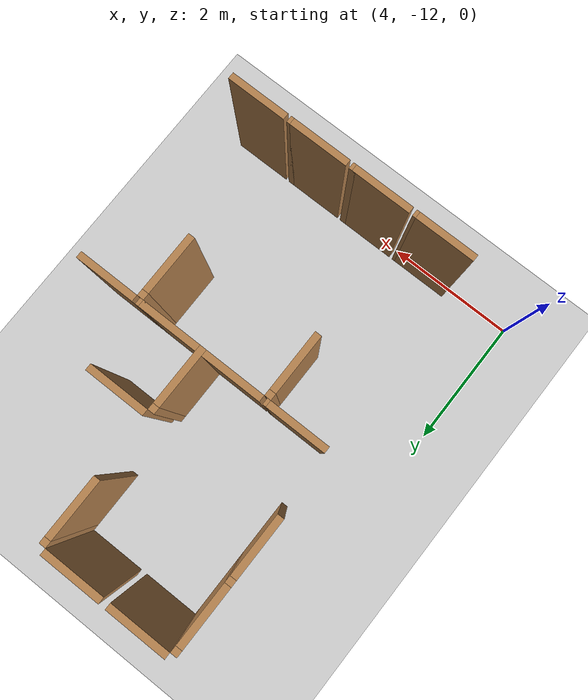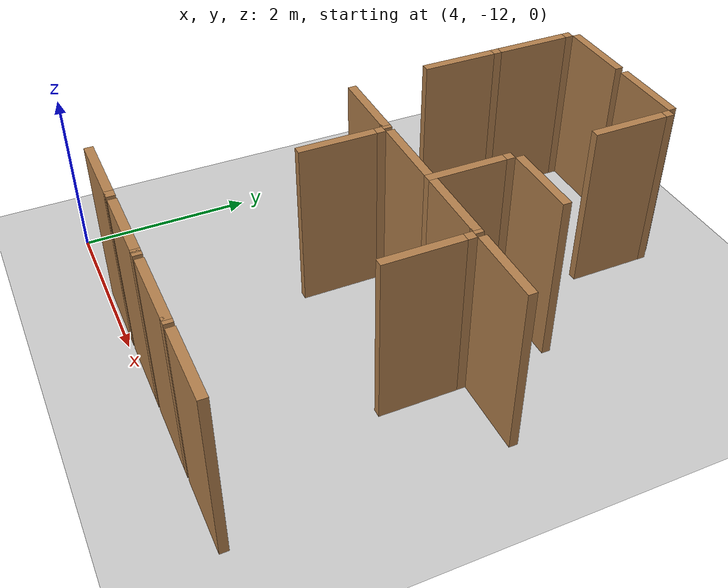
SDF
<sdf version="1.6">
 <world name="default">
  <include><uri>model://sun</uri></include>
  <model name="ground_plane">
   <static>true</static>
   <link name="link">
    <collision name="collision"><geometry><plane><size>12.0 12.0</size></plane></geometry></collision>
    <visual name="visual">
     <cast_shadows>false</cast_shadows>
     <geometry><plane><size>12.0 12.0</size></plane></geometry>
     <material>
      <script><uri>file://media/materials/scripts/gazebo.material</uri><name>Gazebo/Grey</name></script>
     </material>
    </visual>
   </link>
   <pose>6.0 -6.0 0 0 0 0</pose>
  </model>
  <model name="vwall_6_5">
   <pose>5.0 -6.5 1.0 0 0 0</pose>
   <link name="link">
    <collision name="collision"><geometry><box><size>0.1 0.9 2</size></box></geometry></collision>
    <visual name="visual">
     <geometry><box><size>0.1 0.9 2</size></box></geometry>
     <material>
      <script><uri>file://media/materials/scripts/gazebo.material</uri><name>Gazebo/Wood</name></script>
     </material>
    </visual>
   </link>
  </model>
  <model name="joint_5.0_-6.0">
   <pose>5.0 -6.0 1.0 0 0 0</pose>
   <link name="link">
    <collision name="collision"><geometry><box><size>0.1 0.1 2</size></box></geometry></collision>
    <visual name="visual">
     <geometry><box><size>0.1 0.1 2</size></box></geometry>
     <material>
      <script><uri>file://media/materials/scripts/gazebo.material</uri><name>Gazebo/Wood</name></script>
     </material>
    </visual>
   </link>
  </model>
  <model name="vwall_6_7">
   <pose>7.0 -6.5 1.0 0 0 0</pose>
   <link name="link">
    <collision name="collision"><geometry><box><size>0.1 0.9 2</size></box></geometry></collision>
    <visual name="visual">
     <geometry><box><size>0.1 0.9 2</size></box></geometry>
     <material>
      <script><uri>file://media/materials/scripts/gazebo.material</uri><name>Gazebo/Wood</name></script>
     </material>
    </visual>
   </link>
  </model>
  <model name="joint_7.0_-6.0">
   <pose>7.0 -6.0 1.0 0 0 0</pose>
   <link name="link">
    <collision name="collision"><geometry><box><size>0.1 0.1 2</size></box></geometry></collision>
    <visual name="visual">
     <geometry><box><size>0.1 0.1 2</size></box></geometry>
     <material>
      <script><uri>file://media/materials/scripts/gazebo.material</uri><name>Gazebo/Wood</name></script>
     </material>
    </visual>
   </link>
  </model>
  <model name="vwall_7_5">
   <pose>5.0 -7.5 1.0 0 0 0</pose>
   <link name="link">
    <collision name="collision"><geometry><box><size>0.1 0.9 2</size></box></geometry></collision>
    <visual name="visual">
     <geometry><box><size>0.1 0.9 2</size></box></geometry>
     <material>
      <script><uri>file://media/materials/scripts/gazebo.material</uri><name>Gazebo/Wood</name></script>
     </material>
    </visual>
   </link>
  </model>
  <model name="joint_5.0_-7.0">
   <pose>5.0 -7.0 1.0 0 0 0</pose>
   <link name="link">
    <collision name="collision"><geometry><box><size>0.1 0.1 2</size></box></geometry></collision>
    <visual name="visual">
     <geometry><box><size>0.1 0.1 2</size></box></geometry>
     <material>
      <script><uri>file://media/materials/scripts/gazebo.material</uri><name>Gazebo/Wood</name></script>
     </material>
    </visual>
   </link>
  </model>
  <model name="vwall_8_7">
   <pose>7.0 -8.5 1.0 0 0 0</pose>
   <link name="link">
    <collision name="collision"><geometry><box><size>0.1 0.9 2</size></box></geometry></collision>
    <visual name="visual">
     <geometry><box><size>0.1 0.9 2</size></box></geometry>
     <material>
      <script><uri>file://media/materials/scripts/gazebo.material</uri><name>Gazebo/Wood</name></script>
     </material>
    </visual>
   </link>
  </model>
  <model name="joint_7.0_-8.0">
   <pose>7.0 -8.0 1.0 0 0 0</pose>
   <link name="link">
    <collision name="collision"><geometry><box><size>0.1 0.1 2</size></box></geometry></collision>
    <visual name="visual">
     <geometry><box><size>0.1 0.1 2</size></box></geometry>
     <material>
      <script><uri>file://media/materials/scripts/gazebo.material</uri><name>Gazebo/Wood</name></script>
     </material>
    </visual>
   </link>
  </model>
  <model name="vwall_9_6">
   <pose>6.0 -9.5 1.0 0 0 0</pose>
   <link name="link">
    <collision name="collision"><geometry><box><size>0.1 0.9 2</size></box></geometry></collision>
    <visual name="visual">
     <geometry><box><size>0.1 0.9 2</size></box></geometry>
     <material>
      <script><uri>file://media/materials/scripts/gazebo.material</uri><name>Gazebo/Wood</name></script>
     </material>
    </visual>
   </link>
  </model>
  <model name="joint_6.0_-9.0">
   <pose>6.0 -9.0 1.0 0 0 0</pose>
   <link name="link">
    <collision name="collision"><geometry><box><size>0.1 0.1 2</size></box></geometry></collision>
    <visual name="visual">
     <geometry><box><size>0.1 0.1 2</size></box></geometry>
     <material>
      <script><uri>file://media/materials/scripts/gazebo.material</uri><name>Gazebo/Wood</name></script>
     </material>
    </visual>
   </link>
  </model>
  <model name="vwall_9_8">
   <pose>8.0 -9.5 1.0 0 0 0</pose>
   <link name="link">
    <collision name="collision"><geometry><box><size>0.1 0.9 2</size></box></geometry></collision>
    <visual name="visual">
     <geometry><box><size>0.1 0.9 2</size></box></geometry>
     <material>
      <script><uri>file://media/materials/scripts/gazebo.material</uri><name>Gazebo/Wood</name></script>
     </material>
    </visual>
   </link>
  </model>
  <model name="joint_8.0_-9.0">
   <pose>8.0 -9.0 1.0 0 0 0</pose>
   <link name="link">
    <collision name="collision"><geometry><box><size>0.1 0.1 2</size></box></geometry></collision>
    <visual name="visual">
     <geometry><box><size>0.1 0.1 2</size></box></geometry>
     <material>
      <script><uri>file://media/materials/scripts/gazebo.material</uri><name>Gazebo/Wood</name></script>
     </material>
    </visual>
   </link>
  </model>
  <model name="hwall_5_5">
   <pose>5.5 -5.9 1.0 0 0 0</pose>
   <link name="link">
    <collision name="collision"><geometry><box><size>0.9 0.1 2</size></box></geometry></collision>
    <visual name="visual">
     <geometry><box><size>0.9 0.1 2</size></box></geometry>
     <material>
      <script><uri>file://media/materials/scripts/gazebo.material</uri><name>Gazebo/Wood</name></script>
     </material>
    </visual>
   </link>
  </model>
  <model name="hwall_5_6">
   <pose>6.5 -5.9 1.0 0 0 0</pose>
   <link name="link">
    <collision name="collision"><geometry><box><size>0.9 0.1 2</size></box></geometry></collision>
    <visual name="visual">
     <geometry><box><size>0.9 0.1 2</size></box></geometry>
     <material>
      <script><uri>file://media/materials/scripts/gazebo.material</uri><name>Gazebo/Wood</name></script>
     </material>
    </visual>
   </link>
  </model>
  <model name="hwall_7_7">
   <pose>7.5 -7.9 1.0 0 0 0</pose>
   <link name="link">
    <collision name="collision"><geometry><box><size>0.9 0.1 2</size></box></geometry></collision>
    <visual name="visual">
     <geometry><box><size>0.9 0.1 2</size></box></geometry>
     <material>
      <script><uri>file://media/materials/scripts/gazebo.material</uri><name>Gazebo/Wood</name></script>
     </material>
    </visual>
   </link>
  </model>
  <model name="hwall_8_5">
   <pose>5.5 -8.9 1.0 0 0 0</pose>
   <link name="link">
    <collision name="collision"><geometry><box><size>0.9 0.1 2</size></box></geometry></collision>
    <visual name="visual">
     <geometry><box><size>0.9 0.1 2</size></box></geometry>
     <material>
      <script><uri>file://media/materials/scripts/gazebo.material</uri><name>Gazebo/Wood</name></script>
     </material>
    </visual>
   </link>
  </model>
  <model name="joint_5.95_-8.9">
   <pose>5.95 -8.9 1.0 0 0 0</pose>
   <link name="link">
    <collision name="collision"><geometry><box><size>0.1 0.1 2</size></box></geometry></collision>
    <visual name="visual">
     <geometry><box><size>0.1 0.1 2</size></box></geometry>
     <material>
      <script><uri>file://media/materials/scripts/gazebo.material</uri><name>Gazebo/Wood</name></script>
     </material>
    </visual>
   </link>
  </model>
  <model name="hwall_8_6">
   <pose>6.5 -8.9 1.0 0 0 0</pose>
   <link name="link">
    <collision name="collision"><geometry><box><size>0.9 0.1 2</size></box></geometry></collision>
    <visual name="visual">
     <geometry><box><size>0.9 0.1 2</size></box></geometry>
     <material>
      <script><uri>file://media/materials/scripts/gazebo.material</uri><name>Gazebo/Wood</name></script>
     </material>
    </visual>
   </link>
  </model>
  <model name="hwall_8_7">
   <pose>7.5 -8.9 1.0 0 0 0</pose>
   <link name="link">
    <collision name="collision"><geometry><box><size>0.9 0.1 2</size></box></geometry></collision>
    <visual name="visual">
     <geometry><box><size>0.9 0.1 2</size></box></geometry>
     <material>
      <script><uri>file://media/materials/scripts/gazebo.material</uri><name>Gazebo/Wood</name></script>
     </material>
    </visual>
   </link>
  </model>
  <model name="joint_7.95_-8.9">
   <pose>7.95 -8.9 1.0 0 0 0</pose>
   <link name="link">
    <collision name="collision"><geometry><box><size>0.1 0.1 2</size></box></geometry></collision>
    <visual name="visual">
     <geometry><box><size>0.1 0.1 2</size></box></geometry>
     <material>
      <script><uri>file://media/materials/scripts/gazebo.material</uri><name>Gazebo/Wood</name></script>
     </material>
    </visual>
   </link>
  </model>
  <model name="hwall_8_8">
   <pose>8.5 -8.9 1.0 0 0 0</pose>
   <link name="link">
    <collision name="collision"><geometry><box><size>0.9 0.1 2</size></box></geometry></collision>
    <visual name="visual">
     <geometry><box><size>0.9 0.1 2</size></box></geometry>
     <material>
      <script><uri>file://media/materials/scripts/gazebo.material</uri><name>Gazebo/Wood</name></script>
     </material>
    </visual>
   </link>
  </model>
  <model name="hwall_11_5">
   <pose>5.5 -11.9 1.0 0 0 0</pose>
   <link name="link">
    <collision name="collision"><geometry><box><size>0.9 0.1 2</size></box></geometry></collision>
    <visual name="visual">
     <geometry><box><size>0.9 0.1 2</size></box></geometry>
     <material>
      <script><uri>file://media/materials/scripts/gazebo.material</uri><name>Gazebo/Wood</name></script>
     </material>
    </visual>
   </link>
  </model>
  <model name="joint_5.95_-11.9">
   <pose>5.95 -11.9 1.0 0 0 0</pose>
   <link name="link">
    <collision name="collision"><geometry><box><size>0.1 0.1 2</size></box></geometry></collision>
    <visual name="visual">
     <geometry><box><size>0.1 0.1 2</size></box></geometry>
     <material>
      <script><uri>file://media/materials/scripts/gazebo.material</uri><name>Gazebo/Wood</name></script>
     </material>
    </visual>
   </link>
  </model>
  <model name="hwall_11_6">
   <pose>6.5 -11.9 1.0 0 0 0</pose>
   <link name="link">
    <collision name="collision"><geometry><box><size>0.9 0.1 2</size></box></geometry></collision>
    <visual name="visual">
     <geometry><box><size>0.9 0.1 2</size></box></geometry>
     <material>
      <script><uri>file://media/materials/scripts/gazebo.material</uri><name>Gazebo/Wood</name></script>
     </material>
    </visual>
   </link>
  </model>
  <model name="joint_6.95_-11.9">
   <pose>6.95 -11.9 1.0 0 0 0</pose>
   <link name="link">
    <collision name="collision"><geometry><box><size>0.1 0.1 2</size></box></geometry></collision>
    <visual name="visual">
     <geometry><box><size>0.1 0.1 2</size></box></geometry>
     <material>
      <script><uri>file://media/materials/scripts/gazebo.material</uri><name>Gazebo/Wood</name></script>
     </material>
    </visual>
   </link>
  </model>
  <model name="hwall_11_7">
   <pose>7.5 -11.9 1.0 0 0 0</pose>
   <link name="link">
    <collision name="collision"><geometry><box><size>0.9 0.1 2</size></box></geometry></collision>
    <visual name="visual">
     <geometry><box><size>0.9 0.1 2</size></box></geometry>
     <material>
      <script><uri>file://media/materials/scripts/gazebo.material</uri><name>Gazebo/Wood</name></script>
     </material>
    </visual>
   </link>
  </model>
  <model name="joint_7.95_-11.9">
   <pose>7.95 -11.9 1.0 0 0 0</pose>
   <link name="link">
    <collision name="collision"><geometry><box><size>0.1 0.1 2</size></box></geometry></collision>
    <visual name="visual">
     <geometry><box><size>0.1 0.1 2</size></box></geometry>
     <material>
      <script><uri>file://media/materials/scripts/gazebo.material</uri><name>Gazebo/Wood</name></script>
     </material>
    </visual>
   </link>
  </model>
  <model name="hwall_11_8">
   <pose>8.5 -11.9 1.0 0 0 0</pose>
   <link name="link">
    <collision name="collision"><geometry><box><size>0.9 0.1 2</size></box></geometry></collision>
    <visual name="visual">
     <geometry><box><size>0.9 0.1 2</size></box></geometry>
     <material>
      <script><uri>file://media/materials/scripts/gazebo.material</uri><name>Gazebo/Wood</name></script>
     </material>
    </visual>
   </link>
  </model>
 </world>
</sdf>
